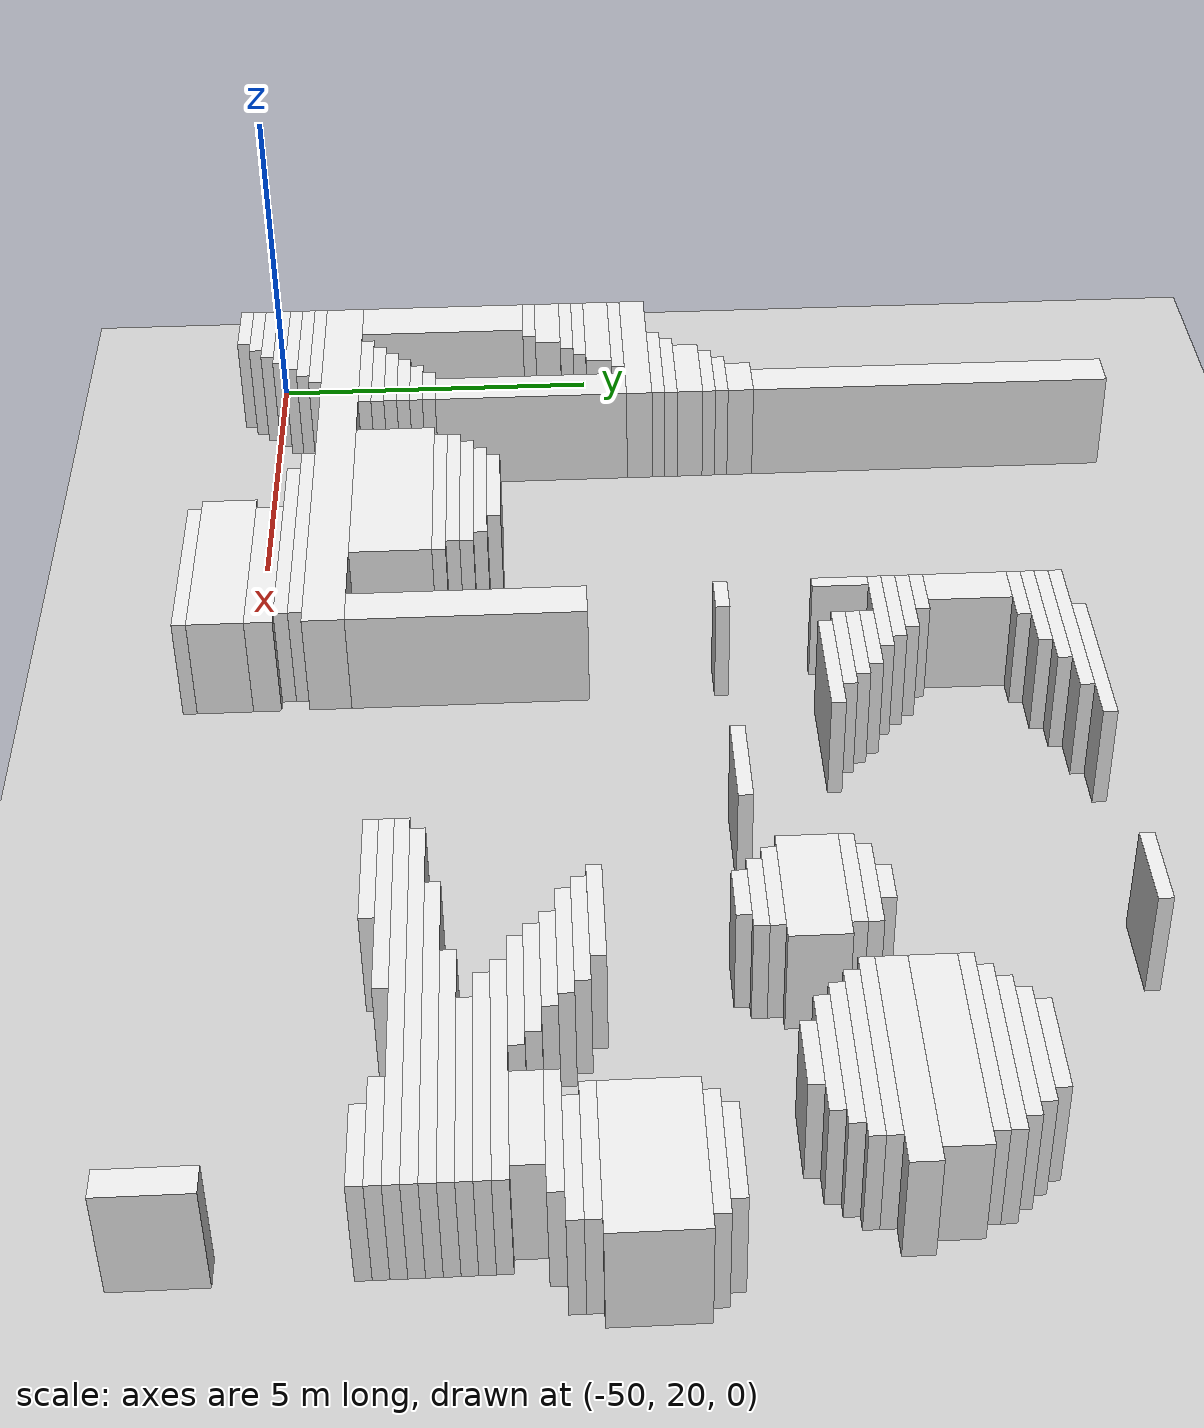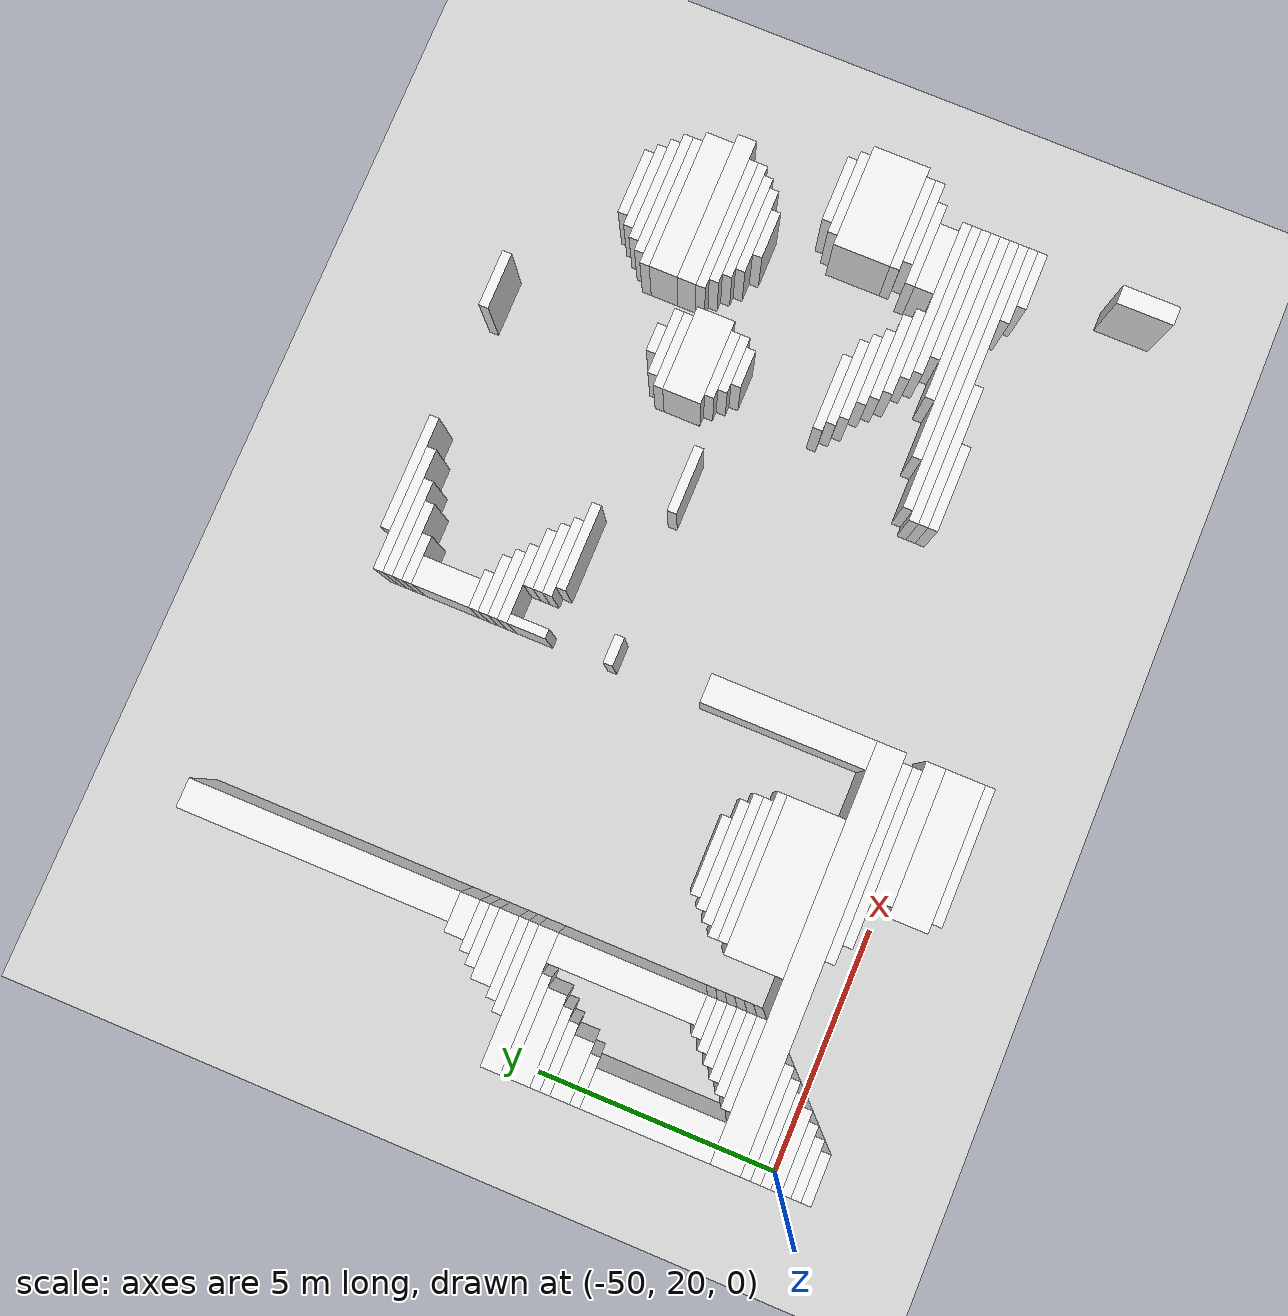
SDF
<sdf version="1.7">
 <world name="default">
  <model name="ground_plane">
   <static>1</static>
   <link name="link">
    <collision name="collision">
     <geometry><plane><normal>0 0 1</normal><size>120 120</size></plane></geometry>
    </collision>
    <visual name="visual">
     <geometry><plane><normal>0 0 1</normal><size>120 120</size></plane></geometry>
     <material>
      <script><uri>file://media/materials/scripts/gazebo.material</uri><name>Gazebo/Grey</name></script>
     </material>
    </visual>
   </link>
  </model>
  <model name="random_complex_01_model">
   <static>1</static>
   <link name="obs_591">
    <pose>-40.2000 31.7000 0.8000 0 0 0</pose>
    <collision name="obs_591_col"><geometry><box><size>2.4000 0.2000 1.6000</size></box></geometry></collision>
    <visual name="obs_591_vis">
     <geometry><box><size>2.4000 0.2000 1.6000</size></box></geometry>
     <material>
      <script><uri>file://media/materials/scripts/gazebo.material</uri><name>Gazebo/White</name></script>
     </material>
    </visual>
   </link>
   <link name="obs_592">
    <pose>-36.0000 31.7000 0.8000 0 0 0</pose>
    <collision name="obs_592_col"><geometry><box><size>1.2000 0.2000 1.6000</size></box></geometry></collision>
    <visual name="obs_592_vis">
     <geometry><box><size>1.2000 0.2000 1.6000</size></box></geometry>
     <material>
      <script><uri>file://media/materials/scripts/gazebo.material</uri><name>Gazebo/White</name></script>
     </material>
    </visual>
   </link>
   <link name="obs_600">
    <pose>-40.9000 31.5000 0.8000 0 0 0</pose>
    <collision name="obs_600_col"><geometry><box><size>2.6000 0.2000 1.6000</size></box></geometry></collision>
    <visual name="obs_600_vis">
     <geometry><box><size>2.6000 0.2000 1.6000</size></box></geometry>
     <material>
      <script><uri>file://media/materials/scripts/gazebo.material</uri><name>Gazebo/White</name></script>
     </material>
    </visual>
   </link>
   <link name="obs_606">
    <pose>-41.2000 31.3000 0.8000 0 0 0</pose>
    <collision name="obs_606_col"><geometry><box><size>2.0000 0.2000 1.6000</size></box></geometry></collision>
    <visual name="obs_606_vis">
     <geometry><box><size>2.0000 0.2000 1.6000</size></box></geometry>
     <material>
      <script><uri>file://media/materials/scripts/gazebo.material</uri><name>Gazebo/White</name></script>
     </material>
    </visual>
   </link>
   <link name="obs_612">
    <pose>-41.4000 31.1000 0.8000 0 0 0</pose>
    <collision name="obs_612_col"><geometry><box><size>1.6000 0.2000 1.6000</size></box></geometry></collision>
    <visual name="obs_612_vis">
     <geometry><box><size>1.6000 0.2000 1.6000</size></box></geometry>
     <material>
      <script><uri>file://media/materials/scripts/gazebo.material</uri><name>Gazebo/White</name></script>
     </material>
    </visual>
   </link>
   <link name="obs_620">
    <pose>-41.7000 30.9000 0.8000 0 0 0</pose>
    <collision name="obs_620_col"><geometry><box><size>1.0000 0.2000 1.6000</size></box></geometry></collision>
    <visual name="obs_620_vis">
     <geometry><box><size>1.0000 0.2000 1.6000</size></box></geometry>
     <material>
      <script><uri>file://media/materials/scripts/gazebo.material</uri><name>Gazebo/White</name></script>
     </material>
    </visual>
   </link>
   <link name="obs_643">
    <pose>-33.1000 29.9000 0.8000 0 0 0</pose>
    <collision name="obs_643_col"><geometry><box><size>1.4000 0.2000 1.6000</size></box></geometry></collision>
    <visual name="obs_643_vis">
     <geometry><box><size>1.4000 0.2000 1.6000</size></box></geometry>
     <material>
      <script><uri>file://media/materials/scripts/gazebo.material</uri><name>Gazebo/White</name></script>
     </material>
    </visual>
   </link>
   <link name="obs_650">
    <pose>-41.9000 30.2000 0.8000 0 0 0</pose>
    <collision name="obs_650_col"><geometry><box><size>0.6000 1.2000 1.6000</size></box></geometry></collision>
    <visual name="obs_650_vis">
     <geometry><box><size>0.6000 1.2000 1.6000</size></box></geometry>
     <material>
      <script><uri>file://media/materials/scripts/gazebo.material</uri><name>Gazebo/White</name></script>
     </material>
    </visual>
   </link>
   <link name="obs_651">
    <pose>-33.1000 29.7000 0.8000 0 0 0</pose>
    <collision name="obs_651_col"><geometry><box><size>1.8000 0.2000 1.6000</size></box></geometry></collision>
    <visual name="obs_651_vis">
     <geometry><box><size>1.8000 0.2000 1.6000</size></box></geometry>
     <material>
      <script><uri>file://media/materials/scripts/gazebo.material</uri><name>Gazebo/White</name></script>
     </material>
    </visual>
   </link>
   <link name="obs_658">
    <pose>-41.8000 29.5000 0.8000 0 0 0</pose>
    <collision name="obs_658_col"><geometry><box><size>0.8000 0.2000 1.6000</size></box></geometry></collision>
    <visual name="obs_658_vis">
     <geometry><box><size>0.8000 0.2000 1.6000</size></box></geometry>
     <material>
      <script><uri>file://media/materials/scripts/gazebo.material</uri><name>Gazebo/White</name></script>
     </material>
    </visual>
   </link>
   <link name="obs_659">
    <pose>-33.1000 29.5000 0.8000 0 0 0</pose>
    <collision name="obs_659_col"><geometry><box><size>2.2000 0.2000 1.6000</size></box></geometry></collision>
    <visual name="obs_659_vis">
     <geometry><box><size>2.2000 0.2000 1.6000</size></box></geometry>
     <material>
      <script><uri>file://media/materials/scripts/gazebo.material</uri><name>Gazebo/White</name></script>
     </material>
    </visual>
   </link>
   <link name="obs_664">
    <pose>-41.6000 29.3000 0.8000 0 0 0</pose>
    <collision name="obs_664_col"><geometry><box><size>1.2000 0.2000 1.6000</size></box></geometry></collision>
    <visual name="obs_664_vis">
     <geometry><box><size>1.2000 0.2000 1.6000</size></box></geometry>
     <material>
      <script><uri>file://media/materials/scripts/gazebo.material</uri><name>Gazebo/White</name></script>
     </material>
    </visual>
   </link>
   <link name="obs_665">
    <pose>-33.1000 29.3000 0.8000 0 0 0</pose>
    <collision name="obs_665_col"><geometry><box><size>2.6000 0.2000 1.6000</size></box></geometry></collision>
    <visual name="obs_665_vis">
     <geometry><box><size>2.6000 0.2000 1.6000</size></box></geometry>
     <material>
      <script><uri>file://media/materials/scripts/gazebo.material</uri><name>Gazebo/White</name></script>
     </material>
    </visual>
   </link>
   <link name="obs_673">
    <pose>-41.5000 29.1000 0.8000 0 0 0</pose>
    <collision name="obs_673_col"><geometry><box><size>1.4000 0.2000 1.6000</size></box></geometry></collision>
    <visual name="obs_673_vis">
     <geometry><box><size>1.4000 0.2000 1.6000</size></box></geometry>
     <material>
      <script><uri>file://media/materials/scripts/gazebo.material</uri><name>Gazebo/White</name></script>
     </material>
    </visual>
   </link>
   <link name="obs_674">
    <pose>-33.2000 29.1000 0.8000 0 0 0</pose>
    <collision name="obs_674_col"><geometry><box><size>2.8000 0.2000 1.6000</size></box></geometry></collision>
    <visual name="obs_674_vis">
     <geometry><box><size>2.8000 0.2000 1.6000</size></box></geometry>
     <material>
      <script><uri>file://media/materials/scripts/gazebo.material</uri><name>Gazebo/White</name></script>
     </material>
    </visual>
   </link>
   <link name="obs_682">
    <pose>-41.4000 28.9000 0.8000 0 0 0</pose>
    <collision name="obs_682_col"><geometry><box><size>1.6000 0.2000 1.6000</size></box></geometry></collision>
    <visual name="obs_682_vis">
     <geometry><box><size>1.6000 0.2000 1.6000</size></box></geometry>
     <material>
      <script><uri>file://media/materials/scripts/gazebo.material</uri><name>Gazebo/White</name></script>
     </material>
    </visual>
   </link>
   <link name="obs_689">
    <pose>-40.8000 28.7000 0.8000 0 0 0</pose>
    <collision name="obs_689_col"><geometry><box><size>1.2000 0.2000 1.6000</size></box></geometry></collision>
    <visual name="obs_689_vis">
     <geometry><box><size>1.2000 0.2000 1.6000</size></box></geometry>
     <material>
      <script><uri>file://media/materials/scripts/gazebo.material</uri><name>Gazebo/White</name></script>
     </material>
    </visual>
   </link>
   <link name="obs_695">
    <pose>-33.1000 28.7000 0.8000 0 0 0</pose>
    <collision name="obs_695_col"><geometry><box><size>3.0000 0.6000 1.6000</size></box></geometry></collision>
    <visual name="obs_695_vis">
     <geometry><box><size>3.0000 0.6000 1.6000</size></box></geometry>
     <material>
      <script><uri>file://media/materials/scripts/gazebo.material</uri><name>Gazebo/White</name></script>
     </material>
    </visual>
   </link>
   <link name="obs_698">
    <pose>-40.7000 28.5000 0.8000 0 0 0</pose>
    <collision name="obs_698_col"><geometry><box><size>1.4000 0.2000 1.6000</size></box></geometry></collision>
    <visual name="obs_698_vis">
     <geometry><box><size>1.4000 0.2000 1.6000</size></box></geometry>
     <material>
      <script><uri>file://media/materials/scripts/gazebo.material</uri><name>Gazebo/White</name></script>
     </material>
    </visual>
   </link>
   <link name="obs_707">
    <pose>-40.6000 28.3000 0.8000 0 0 0</pose>
    <collision name="obs_707_col"><geometry><box><size>1.6000 0.2000 1.6000</size></box></geometry></collision>
    <visual name="obs_707_vis">
     <geometry><box><size>1.6000 0.2000 1.6000</size></box></geometry>
     <material>
      <script><uri>file://media/materials/scripts/gazebo.material</uri><name>Gazebo/White</name></script>
     </material>
    </visual>
   </link>
   <link name="obs_708">
    <pose>-35.9000 28.3000 0.8000 0 0 0</pose>
    <collision name="obs_708_col"><geometry><box><size>0.6000 0.2000 1.6000</size></box></geometry></collision>
    <visual name="obs_708_vis">
     <geometry><box><size>0.6000 0.2000 1.6000</size></box></geometry>
     <material>
      <script><uri>file://media/materials/scripts/gazebo.material</uri><name>Gazebo/White</name></script>
     </material>
    </visual>
   </link>
   <link name="obs_719">
    <pose>-42.1000 28.4000 0.8000 0 0 0</pose>
    <collision name="obs_719_col"><geometry><box><size>0.2000 0.8000 1.6000</size></box></geometry></collision>
    <visual name="obs_719_vis">
     <geometry><box><size>0.2000 0.8000 1.6000</size></box></geometry>
     <material>
      <script><uri>file://media/materials/scripts/gazebo.material</uri><name>Gazebo/White</name></script>
     </material>
    </visual>
   </link>
   <link name="obs_720">
    <pose>-33.0000 28.2000 0.8000 0 0 0</pose>
    <collision name="obs_720_col"><geometry><box><size>3.2000 0.4000 1.6000</size></box></geometry></collision>
    <visual name="obs_720_vis">
     <geometry><box><size>3.2000 0.4000 1.6000</size></box></geometry>
     <material>
      <script><uri>file://media/materials/scripts/gazebo.material</uri><name>Gazebo/White</name></script>
     </material>
    </visual>
   </link>
   <link name="obs_722">
    <pose>-40.3000 28.1000 0.8000 0 0 0</pose>
    <collision name="obs_722_col"><geometry><box><size>1.8000 0.2000 1.6000</size></box></geometry></collision>
    <visual name="obs_722_vis">
     <geometry><box><size>1.8000 0.2000 1.6000</size></box></geometry>
     <material>
      <script><uri>file://media/materials/scripts/gazebo.material</uri><name>Gazebo/White</name></script>
     </material>
    </visual>
   </link>
   <link name="obs_723">
    <pose>-35.9000 28.1000 0.8000 0 0 0</pose>
    <collision name="obs_723_col"><geometry><box><size>1.4000 0.2000 1.6000</size></box></geometry></collision>
    <visual name="obs_723_vis">
     <geometry><box><size>1.4000 0.2000 1.6000</size></box></geometry>
     <material>
      <script><uri>file://media/materials/scripts/gazebo.material</uri><name>Gazebo/White</name></script>
     </material>
    </visual>
   </link>
   <link name="obs_732">
    <pose>-36.0000 27.9000 0.8000 0 0 0</pose>
    <collision name="obs_732_col"><geometry><box><size>1.6000 0.2000 1.6000</size></box></geometry></collision>
    <visual name="obs_732_vis">
     <geometry><box><size>1.6000 0.2000 1.6000</size></box></geometry>
     <material>
      <script><uri>file://media/materials/scripts/gazebo.material</uri><name>Gazebo/White</name></script>
     </material>
    </visual>
   </link>
   <link name="obs_733">
    <pose>-33.2000 27.9000 0.8000 0 0 0</pose>
    <collision name="obs_733_col"><geometry><box><size>2.8000 0.2000 1.6000</size></box></geometry></collision>
    <visual name="obs_733_vis">
     <geometry><box><size>2.8000 0.2000 1.6000</size></box></geometry>
     <material>
      <script><uri>file://media/materials/scripts/gazebo.material</uri><name>Gazebo/White</name></script>
     </material>
    </visual>
   </link>
   <link name="obs_738">
    <pose>-47.5000 30.4000 0.8000 0 0 0</pose>
    <collision name="obs_738_col"><geometry><box><size>0.6000 5.6000 1.6000</size></box></geometry></collision>
    <visual name="obs_738_vis">
     <geometry><box><size>0.6000 5.6000 1.6000</size></box></geometry>
     <material>
      <script><uri>file://media/materials/scripts/gazebo.material</uri><name>Gazebo/White</name></script>
     </material>
    </visual>
   </link>
   <link name="obs_740">
    <pose>-33.1000 27.7000 0.8000 0 0 0</pose>
    <collision name="obs_740_col"><geometry><box><size>2.6000 0.2000 1.6000</size></box></geometry></collision>
    <visual name="obs_740_vis">
     <geometry><box><size>2.6000 0.2000 1.6000</size></box></geometry>
     <material>
      <script><uri>file://media/materials/scripts/gazebo.material</uri><name>Gazebo/White</name></script>
     </material>
    </visual>
   </link>
   <link name="obs_744">
    <pose>-33.1000 27.5000 0.8000 0 0 0</pose>
    <collision name="obs_744_col"><geometry><box><size>2.2000 0.2000 1.6000</size></box></geometry></collision>
    <visual name="obs_744_vis">
     <geometry><box><size>2.2000 0.2000 1.6000</size></box></geometry>
     <material>
      <script><uri>file://media/materials/scripts/gazebo.material</uri><name>Gazebo/White</name></script>
     </material>
    </visual>
   </link>
   <link name="obs_746">
    <pose>-47.6000 27.4000 0.8000 0 0 0</pose>
    <collision name="obs_746_col"><geometry><box><size>0.8000 0.4000 1.6000</size></box></geometry></collision>
    <visual name="obs_746_vis">
     <geometry><box><size>0.8000 0.4000 1.6000</size></box></geometry>
     <material>
      <script><uri>file://media/materials/scripts/gazebo.material</uri><name>Gazebo/White</name></script>
     </material>
    </visual>
   </link>
   <link name="obs_749">
    <pose>-33.1000 27.3000 0.8000 0 0 0</pose>
    <collision name="obs_749_col"><geometry><box><size>1.8000 0.2000 1.6000</size></box></geometry></collision>
    <visual name="obs_749_vis">
     <geometry><box><size>1.8000 0.2000 1.6000</size></box></geometry>
     <material>
      <script><uri>file://media/materials/scripts/gazebo.material</uri><name>Gazebo/White</name></script>
     </material>
    </visual>
   </link>
   <link name="obs_752">
    <pose>-35.9000 27.4000 0.8000 0 0 0</pose>
    <collision name="obs_752_col"><geometry><box><size>1.8000 0.8000 1.6000</size></box></geometry></collision>
    <visual name="obs_752_vis">
     <geometry><box><size>1.8000 0.8000 1.6000</size></box></geometry>
     <material>
      <script><uri>file://media/materials/scripts/gazebo.material</uri><name>Gazebo/White</name></script>
     </material>
    </visual>
   </link>
   <link name="obs_753">
    <pose>-47.7000 27.1000 0.8000 0 0 0</pose>
    <collision name="obs_753_col"><geometry><box><size>1.0000 0.2000 1.6000</size></box></geometry></collision>
    <visual name="obs_753_vis">
     <geometry><box><size>1.0000 0.2000 1.6000</size></box></geometry>
     <material>
      <script><uri>file://media/materials/scripts/gazebo.material</uri><name>Gazebo/White</name></script>
     </material>
    </visual>
   </link>
   <link name="obs_754">
    <pose>-33.1000 27.1000 0.8000 0 0 0</pose>
    <collision name="obs_754_col"><geometry><box><size>1.0000 0.2000 1.6000</size></box></geometry></collision>
    <visual name="obs_754_vis">
     <geometry><box><size>1.0000 0.2000 1.6000</size></box></geometry>
     <material>
      <script><uri>file://media/materials/scripts/gazebo.material</uri><name>Gazebo/White</name></script>
     </material>
    </visual>
   </link>
   <link name="obs_757">
    <pose>-47.8000 26.9000 0.8000 0 0 0</pose>
    <collision name="obs_757_col"><geometry><box><size>1.2000 0.2000 1.6000</size></box></geometry></collision>
    <visual name="obs_757_vis">
     <geometry><box><size>1.2000 0.2000 1.6000</size></box></geometry>
     <material>
      <script><uri>file://media/materials/scripts/gazebo.material</uri><name>Gazebo/White</name></script>
     </material>
    </visual>
   </link>
   <link name="obs_758">
    <pose>-35.9000 26.9000 0.8000 0 0 0</pose>
    <collision name="obs_758_col"><geometry><box><size>1.4000 0.2000 1.6000</size></box></geometry></collision>
    <visual name="obs_758_vis">
     <geometry><box><size>1.4000 0.2000 1.6000</size></box></geometry>
     <material>
      <script><uri>file://media/materials/scripts/gazebo.material</uri><name>Gazebo/White</name></script>
     </material>
    </visual>
   </link>
   <link name="obs_763">
    <pose>-41.9000 26.7000 0.8000 0 0 0</pose>
    <collision name="obs_763_col"><geometry><box><size>0.6000 0.2000 1.6000</size></box></geometry></collision>
    <visual name="obs_763_vis">
     <geometry><box><size>0.6000 0.2000 1.6000</size></box></geometry>
     <material>
      <script><uri>file://media/materials/scripts/gazebo.material</uri><name>Gazebo/White</name></script>
     </material>
    </visual>
   </link>
   <link name="obs_764">
    <pose>-38.3000 26.7000 0.8000 0 0 0</pose>
    <collision name="obs_764_col"><geometry><box><size>1.4000 0.2000 1.6000</size></box></geometry></collision>
    <visual name="obs_764_vis">
     <geometry><box><size>1.4000 0.2000 1.6000</size></box></geometry>
     <material>
      <script><uri>file://media/materials/scripts/gazebo.material</uri><name>Gazebo/White</name></script>
     </material>
    </visual>
   </link>
   <link name="obs_765">
    <pose>-35.8000 26.7000 0.8000 0 0 0</pose>
    <collision name="obs_765_col"><geometry><box><size>1.2000 0.2000 1.6000</size></box></geometry></collision>
    <visual name="obs_765_vis">
     <geometry><box><size>1.2000 0.2000 1.6000</size></box></geometry>
     <material>
      <script><uri>file://media/materials/scripts/gazebo.material</uri><name>Gazebo/White</name></script>
     </material>
    </visual>
   </link>
   <link name="obs_777">
    <pose>-47.9000 26.6000 0.8000 0 0 0</pose>
    <collision name="obs_777_col"><geometry><box><size>1.4000 0.4000 1.6000</size></box></geometry></collision>
    <visual name="obs_777_vis">
     <geometry><box><size>1.4000 0.4000 1.6000</size></box></geometry>
     <material>
      <script><uri>file://media/materials/scripts/gazebo.material</uri><name>Gazebo/White</name></script>
     </material>
    </visual>
   </link>
   <link name="obs_779">
    <pose>-35.8000 26.5000 0.8000 0 0 0</pose>
    <collision name="obs_779_col"><geometry><box><size>0.8000 0.2000 1.6000</size></box></geometry></collision>
    <visual name="obs_779_vis">
     <geometry><box><size>0.8000 0.2000 1.6000</size></box></geometry>
     <material>
      <script><uri>file://media/materials/scripts/gazebo.material</uri><name>Gazebo/White</name></script>
     </material>
    </visual>
   </link>
   <link name="obs_783">
    <pose>-48.0000 26.3000 0.8000 0 0 0</pose>
    <collision name="obs_783_col"><geometry><box><size>1.6000 0.2000 1.6000</size></box></geometry></collision>
    <visual name="obs_783_vis">
     <geometry><box><size>1.6000 0.2000 1.6000</size></box></geometry>
     <material>
      <script><uri>file://media/materials/scripts/gazebo.material</uri><name>Gazebo/White</name></script>
     </material>
    </visual>
   </link>
   <link name="obs_790">
    <pose>-48.1000 26.1000 0.8000 0 0 0</pose>
    <collision name="obs_790_col"><geometry><box><size>1.8000 0.2000 1.6000</size></box></geometry></collision>
    <visual name="obs_790_vis">
     <geometry><box><size>1.8000 0.2000 1.6000</size></box></geometry>
     <material>
      <script><uri>file://media/materials/scripts/gazebo.material</uri><name>Gazebo/White</name></script>
     </material>
    </visual>
   </link>
   <link name="obs_791">
    <pose>-31.7000 26.1000 0.8000 0 0 0</pose>
    <collision name="obs_791_col"><geometry><box><size>1.4000 0.2000 1.6000</size></box></geometry></collision>
    <visual name="obs_791_vis">
     <geometry><box><size>1.4000 0.2000 1.6000</size></box></geometry>
     <material>
      <script><uri>file://media/materials/scripts/gazebo.material</uri><name>Gazebo/White</name></script>
     </material>
    </visual>
   </link>
   <link name="obs_797">
    <pose>-31.7000 25.9000 0.8000 0 0 0</pose>
    <collision name="obs_797_col"><geometry><box><size>1.8000 0.2000 1.6000</size></box></geometry></collision>
    <visual name="obs_797_vis">
     <geometry><box><size>1.8000 0.2000 1.6000</size></box></geometry>
     <material>
      <script><uri>file://media/materials/scripts/gazebo.material</uri><name>Gazebo/White</name></script>
     </material>
    </visual>
   </link>
   <link name="obs_802">
    <pose>-48.6000 25.8000 0.8000 0 0 0</pose>
    <collision name="obs_802_col"><geometry><box><size>2.8000 0.4000 1.6000</size></box></geometry></collision>
    <visual name="obs_802_vis">
     <geometry><box><size>2.8000 0.4000 1.6000</size></box></geometry>
     <material>
      <script><uri>file://media/materials/scripts/gazebo.material</uri><name>Gazebo/White</name></script>
     </material>
    </visual>
   </link>
   <link name="obs_809">
    <pose>-49.0000 25.5000 0.8000 0 0 0</pose>
    <collision name="obs_809_col"><geometry><box><size>2.0000 0.2000 1.6000</size></box></geometry></collision>
    <visual name="obs_809_vis">
     <geometry><box><size>2.0000 0.2000 1.6000</size></box></geometry>
     <material>
      <script><uri>file://media/materials/scripts/gazebo.material</uri><name>Gazebo/White</name></script>
     </material>
    </visual>
   </link>
   <link name="obs_820">
    <pose>-49.1000 25.2000 0.8000 0 0 0</pose>
    <collision name="obs_820_col"><geometry><box><size>1.8000 0.4000 1.6000</size></box></geometry></collision>
    <visual name="obs_820_vis">
     <geometry><box><size>1.8000 0.4000 1.6000</size></box></geometry>
     <material>
      <script><uri>file://media/materials/scripts/gazebo.material</uri><name>Gazebo/White</name></script>
     </material>
    </visual>
   </link>
   <link name="obs_825">
    <pose>-49.2000 24.9000 0.8000 0 0 0</pose>
    <collision name="obs_825_col"><geometry><box><size>1.6000 0.2000 1.6000</size></box></geometry></collision>
    <visual name="obs_825_vis">
     <geometry><box><size>1.6000 0.2000 1.6000</size></box></geometry>
     <material>
      <script><uri>file://media/materials/scripts/gazebo.material</uri><name>Gazebo/White</name></script>
     </material>
    </visual>
   </link>
   <link name="obs_828">
    <pose>-31.7000 25.2000 0.8000 0 0 0</pose>
    <collision name="obs_828_col"><geometry><box><size>2.2000 1.2000 1.6000</size></box></geometry></collision>
    <visual name="obs_828_vis">
     <geometry><box><size>2.2000 1.2000 1.6000</size></box></geometry>
     <material>
      <script><uri>file://media/materials/scripts/gazebo.material</uri><name>Gazebo/White</name></script>
     </material>
    </visual>
   </link>
   <link name="obs_829">
    <pose>-49.3000 24.7000 0.8000 0 0 0</pose>
    <collision name="obs_829_col"><geometry><box><size>1.4000 0.2000 1.6000</size></box></geometry></collision>
    <visual name="obs_829_vis">
     <geometry><box><size>1.4000 0.2000 1.6000</size></box></geometry>
     <material>
      <script><uri>file://media/materials/scripts/gazebo.material</uri><name>Gazebo/White</name></script>
     </material>
    </visual>
   </link>
   <link name="obs_830">
    <pose>-35.6000 24.7000 0.8000 0 0 0</pose>
    <collision name="obs_830_col"><geometry><box><size>1.6000 0.2000 1.6000</size></box></geometry></collision>
    <visual name="obs_830_vis">
     <geometry><box><size>1.6000 0.2000 1.6000</size></box></geometry>
     <material>
      <script><uri>file://media/materials/scripts/gazebo.material</uri><name>Gazebo/White</name></script>
     </material>
    </visual>
   </link>
   <link name="obs_836">
    <pose>-35.3000 24.5000 0.8000 0 0 0</pose>
    <collision name="obs_836_col"><geometry><box><size>1.8000 0.2000 1.6000</size></box></geometry></collision>
    <visual name="obs_836_vis">
     <geometry><box><size>1.8000 0.2000 1.6000</size></box></geometry>
     <material>
      <script><uri>file://media/materials/scripts/gazebo.material</uri><name>Gazebo/White</name></script>
     </material>
    </visual>
   </link>
   <link name="obs_837">
    <pose>-31.8000 24.5000 0.8000 0 0 0</pose>
    <collision name="obs_837_col"><geometry><box><size>2.0000 0.2000 1.6000</size></box></geometry></collision>
    <visual name="obs_837_vis">
     <geometry><box><size>2.0000 0.2000 1.6000</size></box></geometry>
     <material>
      <script><uri>file://media/materials/scripts/gazebo.material</uri><name>Gazebo/White</name></script>
     </material>
    </visual>
   </link>
   <link name="obs_844">
    <pose>-49.4000 24.4000 0.8000 0 0 0</pose>
    <collision name="obs_844_col"><geometry><box><size>1.2000 0.4000 1.6000</size></box></geometry></collision>
    <visual name="obs_844_vis">
     <geometry><box><size>1.2000 0.4000 1.6000</size></box></geometry>
     <material>
      <script><uri>file://media/materials/scripts/gazebo.material</uri><name>Gazebo/White</name></script>
     </material>
    </visual>
   </link>
   <link name="obs_845">
    <pose>-35.1000 24.3000 0.8000 0 0 0</pose>
    <collision name="obs_845_col"><geometry><box><size>1.8000 0.2000 1.6000</size></box></geometry></collision>
    <visual name="obs_845_vis">
     <geometry><box><size>1.8000 0.2000 1.6000</size></box></geometry>
     <material>
      <script><uri>file://media/materials/scripts/gazebo.material</uri><name>Gazebo/White</name></script>
     </material>
    </visual>
   </link>
   <link name="obs_846">
    <pose>-31.7000 24.3000 0.8000 0 0 0</pose>
    <collision name="obs_846_col"><geometry><box><size>1.8000 0.2000 1.6000</size></box></geometry></collision>
    <visual name="obs_846_vis">
     <geometry><box><size>1.8000 0.2000 1.6000</size></box></geometry>
     <material>
      <script><uri>file://media/materials/scripts/gazebo.material</uri><name>Gazebo/White</name></script>
     </material>
    </visual>
   </link>
   <link name="obs_851">
    <pose>-49.5000 24.1000 0.8000 0 0 0</pose>
    <collision name="obs_851_col"><geometry><box><size>1.0000 0.2000 1.6000</size></box></geometry></collision>
    <visual name="obs_851_vis">
     <geometry><box><size>1.0000 0.2000 1.6000</size></box></geometry>
     <material>
      <script><uri>file://media/materials/scripts/gazebo.material</uri><name>Gazebo/White</name></script>
     </material>
    </visual>
   </link>
   <link name="obs_852">
    <pose>-34.8000 24.1000 0.8000 0 0 0</pose>
    <collision name="obs_852_col"><geometry><box><size>1.6000 0.2000 1.6000</size></box></geometry></collision>
    <visual name="obs_852_vis">
     <geometry><box><size>1.6000 0.2000 1.6000</size></box></geometry>
     <material>
      <script><uri>file://media/materials/scripts/gazebo.material</uri><name>Gazebo/White</name></script>
     </material>
    </visual>
   </link>
   <link name="obs_853">
    <pose>-32.1000 24.1000 0.8000 0 0 0</pose>
    <collision name="obs_853_col"><geometry><box><size>1.8000 0.2000 1.6000</size></box></geometry></collision>
    <visual name="obs_853_vis">
     <geometry><box><size>1.8000 0.2000 1.6000</size></box></geometry>
     <material>
      <script><uri>file://media/materials/scripts/gazebo.material</uri><name>Gazebo/White</name></script>
     </material>
    </visual>
   </link>
   <link name="obs_859">
    <pose>-34.5000 23.9000 0.8000 0 0 0</pose>
    <collision name="obs_859_col"><geometry><box><size>1.8000 0.2000 1.6000</size></box></geometry></collision>
    <visual name="obs_859_vis">
     <geometry><box><size>1.8000 0.2000 1.6000</size></box></geometry>
     <material>
      <script><uri>file://media/materials/scripts/gazebo.material</uri><name>Gazebo/White</name></script>
     </material>
    </visual>
   </link>
   <link name="obs_862">
    <pose>-32.3000 23.8000 0.8000 0 0 0</pose>
    <collision name="obs_862_col"><geometry><box><size>1.4000 0.4000 1.6000</size></box></geometry></collision>
    <visual name="obs_862_vis">
     <geometry><box><size>1.4000 0.4000 1.6000</size></box></geometry>
     <material>
      <script><uri>file://media/materials/scripts/gazebo.material</uri><name>Gazebo/White</name></script>
     </material>
    </visual>
   </link>
   <link name="obs_864">
    <pose>-34.3000 23.7000 0.8000 0 0 0</pose>
    <collision name="obs_864_col"><geometry><box><size>1.8000 0.2000 1.6000</size></box></geometry></collision>
    <visual name="obs_864_vis">
     <geometry><box><size>1.8000 0.2000 1.6000</size></box></geometry>
     <material>
      <script><uri>file://media/materials/scripts/gazebo.material</uri><name>Gazebo/White</name></script>
     </material>
    </visual>
   </link>
   <link name="obs_869">
    <pose>-44.8000 23.5000 0.8000 0 0 0</pose>
    <collision name="obs_869_col"><geometry><box><size>1.6000 0.2000 1.6000</size></box></geometry></collision>
    <visual name="obs_869_vis">
     <geometry><box><size>1.6000 0.2000 1.6000</size></box></geometry>
     <material>
      <script><uri>file://media/materials/scripts/gazebo.material</uri><name>Gazebo/White</name></script>
     </material>
    </visual>
   </link>
   <link name="obs_870">
    <pose>-33.1000 23.5000 0.8000 0 0 0</pose>
    <collision name="obs_870_col"><geometry><box><size>3.4000 0.2000 1.6000</size></box></geometry></collision>
    <visual name="obs_870_vis">
     <geometry><box><size>3.4000 0.2000 1.6000</size></box></geometry>
     <material>
      <script><uri>file://media/materials/scripts/gazebo.material</uri><name>Gazebo/White</name></script>
     </material>
    </visual>
   </link>
   <link name="obs_878">
    <pose>-44.7000 23.3000 0.8000 0 0 0</pose>
    <collision name="obs_878_col"><geometry><box><size>2.2000 0.2000 1.6000</size></box></geometry></collision>
    <visual name="obs_878_vis">
     <geometry><box><size>2.2000 0.2000 1.6000</size></box></geometry>
     <material>
      <script><uri>file://media/materials/scripts/gazebo.material</uri><name>Gazebo/White</name></script>
     </material>
    </visual>
   </link>
   <link name="obs_879">
    <pose>-33.0000 23.3000 0.8000 0 0 0</pose>
    <collision name="obs_879_col"><geometry><box><size>3.2000 0.2000 1.6000</size></box></geometry></collision>
    <visual name="obs_879_vis">
     <geometry><box><size>3.2000 0.2000 1.6000</size></box></geometry>
     <material>
      <script><uri>file://media/materials/scripts/gazebo.material</uri><name>Gazebo/White</name></script>
     </material>
    </visual>
   </link>
   <link name="obs_889">
    <pose>-44.7000 23.1000 0.8000 0 0 0</pose>
    <collision name="obs_889_col"><geometry><box><size>2.6000 0.2000 1.6000</size></box></geometry></collision>
    <visual name="obs_889_vis">
     <geometry><box><size>2.6000 0.2000 1.6000</size></box></geometry>
     <material>
      <script><uri>file://media/materials/scripts/gazebo.material</uri><name>Gazebo/White</name></script>
     </material>
    </visual>
   </link>
   <link name="obs_890">
    <pose>-32.8000 23.1000 0.8000 0 0 0</pose>
    <collision name="obs_890_col"><geometry><box><size>2.8000 0.2000 1.6000</size></box></geometry></collision>
    <visual name="obs_890_vis">
     <geometry><box><size>2.8000 0.2000 1.6000</size></box></geometry>
     <material>
      <script><uri>file://media/materials/scripts/gazebo.material</uri><name>Gazebo/White</name></script>
     </material>
    </visual>
   </link>
   <link name="obs_897">
    <pose>-44.8000 22.9000 0.8000 0 0 0</pose>
    <collision name="obs_897_col"><geometry><box><size>2.8000 0.2000 1.6000</size></box></geometry></collision>
    <visual name="obs_897_vis">
     <geometry><box><size>2.8000 0.2000 1.6000</size></box></geometry>
     <material>
      <script><uri>file://media/materials/scripts/gazebo.material</uri><name>Gazebo/White</name></script>
     </material>
    </visual>
   </link>
   <link name="obs_898">
    <pose>-33.2000 22.9000 0.8000 0 0 0</pose>
    <collision name="obs_898_col"><geometry><box><size>3.6000 0.2000 1.6000</size></box></geometry></collision>
    <visual name="obs_898_vis">
     <geometry><box><size>3.6000 0.2000 1.6000</size></box></geometry>
     <material>
      <script><uri>file://media/materials/scripts/gazebo.material</uri><name>Gazebo/White</name></script>
     </material>
    </visual>
   </link>
   <link name="obs_907">
    <pose>-47.5000 24.1000 0.8000 0 0 0</pose>
    <collision name="obs_907_col"><geometry><box><size>0.6000 3.0000 1.6000</size></box></geometry></collision>
    <visual name="obs_907_vis">
     <geometry><box><size>0.6000 3.0000 1.6000</size></box></geometry>
     <material>
      <script><uri>file://media/materials/scripts/gazebo.material</uri><name>Gazebo/White</name></script>
     </material>
    </visual>
   </link>
   <link name="obs_908">
    <pose>-44.7000 22.7000 0.8000 0 0 0</pose>
    <collision name="obs_908_col"><geometry><box><size>3.0000 0.2000 1.6000</size></box></geometry></collision>
    <visual name="obs_908_vis">
     <geometry><box><size>3.0000 0.2000 1.6000</size></box></geometry>
     <material>
      <script><uri>file://media/materials/scripts/gazebo.material</uri><name>Gazebo/White</name></script>
     </material>
    </visual>
   </link>
   <link name="obs_909">
    <pose>-33.8000 22.7000 0.8000 0 0 0</pose>
    <collision name="obs_909_col"><geometry><box><size>4.8000 0.2000 1.6000</size></box></geometry></collision>
    <visual name="obs_909_vis">
     <geometry><box><size>4.8000 0.2000 1.6000</size></box></geometry>
     <material>
      <script><uri>file://media/materials/scripts/gazebo.material</uri><name>Gazebo/White</name></script>
     </material>
    </visual>
   </link>
   <link name="obs_918">
    <pose>-47.6000 22.5000 0.8000 0 0 0</pose>
    <collision name="obs_918_col"><geometry><box><size>0.8000 0.2000 1.6000</size></box></geometry></collision>
    <visual name="obs_918_vis">
     <geometry><box><size>0.8000 0.2000 1.6000</size></box></geometry>
     <material>
      <script><uri>file://media/materials/scripts/gazebo.material</uri><name>Gazebo/White</name></script>
     </material>
    </visual>
   </link>
   <link name="obs_919">
    <pose>-34.3000 22.5000 0.8000 0 0 0</pose>
    <collision name="obs_919_col"><geometry><box><size>5.8000 0.2000 1.6000</size></box></geometry></collision>
    <visual name="obs_919_vis">
     <geometry><box><size>5.8000 0.2000 1.6000</size></box></geometry>
     <material>
      <script><uri>file://media/materials/scripts/gazebo.material</uri><name>Gazebo/White</name></script>
     </material>
    </visual>
   </link>
   <link name="obs_927">
    <pose>-47.7000 22.3000 0.8000 0 0 0</pose>
    <collision name="obs_927_col"><geometry><box><size>1.0000 0.2000 1.6000</size></box></geometry></collision>
    <visual name="obs_927_vis">
     <geometry><box><size>1.0000 0.2000 1.6000</size></box></geometry>
     <material>
      <script><uri>file://media/materials/scripts/gazebo.material</uri><name>Gazebo/White</name></script>
     </material>
    </visual>
   </link>
   <link name="obs_928">
    <pose>-34.4000 22.3000 0.8000 0 0 0</pose>
    <collision name="obs_928_col"><geometry><box><size>6.0000 0.2000 1.6000</size></box></geometry></collision>
    <visual name="obs_928_vis">
     <geometry><box><size>6.0000 0.2000 1.6000</size></box></geometry>
     <material>
      <script><uri>file://media/materials/scripts/gazebo.material</uri><name>Gazebo/White</name></script>
     </material>
    </visual>
   </link>
   <link name="obs_935">
    <pose>-47.8000 22.1000 0.8000 0 0 0</pose>
    <collision name="obs_935_col"><geometry><box><size>1.2000 0.2000 1.6000</size></box></geometry></collision>
    <visual name="obs_935_vis">
     <geometry><box><size>1.2000 0.2000 1.6000</size></box></geometry>
     <material>
      <script><uri>file://media/materials/scripts/gazebo.material</uri><name>Gazebo/White</name></script>
     </material>
    </visual>
   </link>
   <link name="obs_936">
    <pose>-35.9000 22.1000 0.8000 0 0 0</pose>
    <collision name="obs_936_col"><geometry><box><size>3.0000 0.2000 1.6000</size></box></geometry></collision>
    <visual name="obs_936_vis">
     <geometry><box><size>3.0000 0.2000 1.6000</size></box></geometry>
     <material>
      <script><uri>file://media/materials/scripts/gazebo.material</uri><name>Gazebo/White</name></script>
     </material>
    </visual>
   </link>
   <link name="obs_937">
    <pose>-32.2000 22.1000 0.8000 0 0 0</pose>
    <collision name="obs_937_col"><geometry><box><size>1.6000 0.2000 1.6000</size></box></geometry></collision>
    <visual name="obs_937_vis">
     <geometry><box><size>1.6000 0.2000 1.6000</size></box></geometry>
     <material>
      <script><uri>file://media/materials/scripts/gazebo.material</uri><name>Gazebo/White</name></script>
     </material>
    </visual>
   </link>
   <link name="obs_945">
    <pose>-47.9000 21.9000 0.8000 0 0 0</pose>
    <collision name="obs_945_col"><geometry><box><size>1.4000 0.2000 1.6000</size></box></geometry></collision>
    <visual name="obs_945_vis">
     <geometry><box><size>1.4000 0.2000 1.6000</size></box></geometry>
     <material>
      <script><uri>file://media/materials/scripts/gazebo.material</uri><name>Gazebo/White</name></script>
     </material>
    </visual>
   </link>
   <link name="obs_946">
    <pose>-36.5000 21.9000 0.8000 0 0 0</pose>
    <collision name="obs_946_col"><geometry><box><size>1.8000 0.2000 1.6000</size></box></geometry></collision>
    <visual name="obs_946_vis">
     <geometry><box><size>1.8000 0.2000 1.6000</size></box></geometry>
     <material>
      <script><uri>file://media/materials/scripts/gazebo.material</uri><name>Gazebo/White</name></script>
     </material>
    </visual>
   </link>
   <link name="obs_947">
    <pose>-32.0000 21.9000 0.8000 0 0 0</pose>
    <collision name="obs_947_col"><geometry><box><size>1.2000 0.2000 1.6000</size></box></geometry></collision>
    <visual name="obs_947_vis">
     <geometry><box><size>1.2000 0.2000 1.6000</size></box></geometry>
     <material>
      <script><uri>file://media/materials/scripts/gazebo.material</uri><name>Gazebo/White</name></script>
     </material>
    </visual>
   </link>
   <link name="obs_953">
    <pose>-48.0000 21.7000 0.8000 0 0 0</pose>
    <collision name="obs_953_col"><geometry><box><size>1.6000 0.2000 1.6000</size></box></geometry></collision>
    <visual name="obs_953_vis">
     <geometry><box><size>1.6000 0.2000 1.6000</size></box></geometry>
     <material>
      <script><uri>file://media/materials/scripts/gazebo.material</uri><name>Gazebo/White</name></script>
     </material>
    </visual>
   </link>
   <link name="obs_954">
    <pose>-41.9000 23.1000 0.8000 0 0 0</pose>
    <collision name="obs_954_col"><geometry><box><size>0.6000 3.4000 1.6000</size></box></geometry></collision>
    <visual name="obs_954_vis">
     <geometry><box><size>0.6000 3.4000 1.6000</size></box></geometry>
     <material>
      <script><uri>file://media/materials/scripts/gazebo.material</uri><name>Gazebo/White</name></script>
     </material>
    </visual>
   </link>
   <link name="obs_955">
    <pose>-49.6000 22.7000 0.8000 0 0 0</pose>
    <collision name="obs_955_col"><geometry><box><size>0.8000 2.6000 1.6000</size></box></geometry></collision>
    <visual name="obs_955_vis">
     <geometry><box><size>0.8000 2.6000 1.6000</size></box></geometry>
     <material>
      <script><uri>file://media/materials/scripts/gazebo.material</uri><name>Gazebo/White</name></script>
     </material>
    </visual>
   </link>
   <link name="obs_956">
    <pose>-44.8000 22.0000 0.8000 0 0 0</pose>
    <collision name="obs_956_col"><geometry><box><size>3.2000 1.2000 1.6000</size></box></geometry></collision>
    <visual name="obs_956_vis">
     <geometry><box><size>3.2000 1.2000 1.6000</size></box></geometry>
     <material>
      <script><uri>file://media/materials/scripts/gazebo.material</uri><name>Gazebo/White</name></script>
     </material>
    </visual>
   </link>
   <link name="obs_957">
    <pose>-48.1000 21.5000 0.8000 0 0 0</pose>
    <collision name="obs_957_col"><geometry><box><size>1.8000 0.2000 1.6000</size></box></geometry></collision>
    <visual name="obs_957_vis">
     <geometry><box><size>1.8000 0.2000 1.6000</size></box></geometry>
     <material>
      <script><uri>file://media/materials/scripts/gazebo.material</uri><name>Gazebo/White</name></script>
     </material>
    </visual>
   </link>
   <link name="obs_961">
    <pose>-45.8000 21.1000 0.8000 0 0 0</pose>
    <collision name="obs_961_col"><geometry><box><size>8.4000 0.6000 1.6000</size></box></geometry></collision>
    <visual name="obs_961_vis">
     <geometry><box><size>8.4000 0.6000 1.6000</size></box></geometry>
     <material>
      <script><uri>file://media/materials/scripts/gazebo.material</uri><name>Gazebo/White</name></script>
     </material>
    </visual>
   </link>
   <link name="obs_964">
    <pose>-48.9000 20.7000 0.8000 0 0 0</pose>
    <collision name="obs_964_col"><geometry><box><size>2.2000 0.2000 1.6000</size></box></geometry></collision>
    <visual name="obs_964_vis">
     <geometry><box><size>2.2000 0.2000 1.6000</size></box></geometry>
     <material>
      <script><uri>file://media/materials/scripts/gazebo.material</uri><name>Gazebo/White</name></script>
     </material>
    </visual>
   </link>
   <link name="obs_965">
    <pose>-43.8000 20.7000 0.8000 0 0 0</pose>
    <collision name="obs_965_col"><geometry><box><size>4.0000 0.2000 1.6000</size></box></geometry></collision>
    <visual name="obs_965_vis">
     <geometry><box><size>4.0000 0.2000 1.6000</size></box></geometry>
     <material>
      <script><uri>file://media/materials/scripts/gazebo.material</uri><name>Gazebo/White</name></script>
     </material>
    </visual>
   </link>
   <link name="obs_968">
    <pose>-49.0000 20.5000 0.8000 0 0 0</pose>
    <collision name="obs_968_col"><geometry><box><size>2.0000 0.2000 1.6000</size></box></geometry></collision>
    <visual name="obs_968_vis">
     <geometry><box><size>2.0000 0.2000 1.6000</size></box></geometry>
     <material>
      <script><uri>file://media/materials/scripts/gazebo.material</uri><name>Gazebo/White</name></script>
     </material>
    </visual>
   </link>
   <link name="obs_969">
    <pose>-43.6000 20.5000 0.8000 0 0 0</pose>
    <collision name="obs_969_col"><geometry><box><size>3.6000 0.2000 1.6000</size></box></geometry></collision>
    <visual name="obs_969_vis">
     <geometry><box><size>3.6000 0.2000 1.6000</size></box></geometry>
     <material>
      <script><uri>file://media/materials/scripts/gazebo.material</uri><name>Gazebo/White</name></script>
     </material>
    </visual>
   </link>
   <link name="obs_973">
    <pose>-49.1000 20.3000 0.8000 0 0 0</pose>
    <collision name="obs_973_col"><geometry><box><size>1.8000 0.2000 1.6000</size></box></geometry></collision>
    <visual name="obs_973_vis">
     <geometry><box><size>1.8000 0.2000 1.6000</size></box></geometry>
     <material>
      <script><uri>file://media/materials/scripts/gazebo.material</uri><name>Gazebo/White</name></script>
     </material>
    </visual>
   </link>
   <link name="obs_977">
    <pose>-43.0000 20.2000 0.8000 0 0 0</pose>
    <collision name="obs_977_col"><geometry><box><size>2.8000 0.4000 1.6000</size></box></geometry></collision>
    <visual name="obs_977_vis">
     <geometry><box><size>2.8000 0.4000 1.6000</size></box></geometry>
     <material>
      <script><uri>file://media/materials/scripts/gazebo.material</uri><name>Gazebo/White</name></script>
     </material>
    </visual>
   </link>
   <link name="obs_978">
    <pose>-49.2000 20.1000 0.8000 0 0 0</pose>
    <collision name="obs_978_col"><geometry><box><size>1.6000 0.2000 1.6000</size></box></geometry></collision>
    <visual name="obs_978_vis">
     <geometry><box><size>1.6000 0.2000 1.6000</size></box></geometry>
     <material>
      <script><uri>file://media/materials/scripts/gazebo.material</uri><name>Gazebo/White</name></script>
     </material>
    </visual>
   </link>
   <link name="obs_988">
    <pose>-49.3000 19.9000 0.8000 0 0 0</pose>
    <collision name="obs_988_col"><geometry><box><size>1.4000 0.2000 1.6000</size></box></geometry></collision>
    <visual name="obs_988_vis">
     <geometry><box><size>1.4000 0.2000 1.6000</size></box></geometry>
     <material>
      <script><uri>file://media/materials/scripts/gazebo.material</uri><name>Gazebo/White</name></script>
     </material>
    </visual>
   </link>
   <link name="obs_994">
    <pose>-49.4000 19.7000 0.8000 0 0 0</pose>
    <collision name="obs_994_col"><geometry><box><size>1.2000 0.2000 1.6000</size></box></geometry></collision>
    <visual name="obs_994_vis">
     <geometry><box><size>1.2000 0.2000 1.6000</size></box></geometry>
     <material>
      <script><uri>file://media/materials/scripts/gazebo.material</uri><name>Gazebo/White</name></script>
     </material>
    </visual>
   </link>
   <link name="obs_998">
    <pose>-49.5000 19.5000 0.8000 0 0 0</pose>
    <collision name="obs_998_col"><geometry><box><size>1.0000 0.2000 1.6000</size></box></geometry></collision>
    <visual name="obs_998_vis">
     <geometry><box><size>1.0000 0.2000 1.6000</size></box></geometry>
     <material>
      <script><uri>file://media/materials/scripts/gazebo.material</uri><name>Gazebo/White</name></script>
     </material>
    </visual>
   </link>
   <link name="obs_1000">
    <pose>-43.1000 19.6000 0.8000 0 0 0</pose>
    <collision name="obs_1000_col"><geometry><box><size>3.0000 0.8000 1.6000</size></box></geometry></collision>
    <visual name="obs_1000_vis">
     <geometry><box><size>3.0000 0.8000 1.6000</size></box></geometry>
     <material>
      <script><uri>file://media/materials/scripts/gazebo.material</uri><name>Gazebo/White</name></script>
     </material>
    </visual>
   </link>
   <link name="obs_1007">
    <pose>-31.6000 19.6000 0.8000 0 0 0</pose>
    <collision name="obs_1007_col"><geometry><box><size>0.4000 1.2000 1.6000</size></box></geometry></collision>
    <visual name="obs_1007_vis">
     <geometry><box><size>0.4000 1.2000 1.6000</size></box></geometry>
     <material>
      <script><uri>file://media/materials/scripts/gazebo.material</uri><name>Gazebo/White</name></script>
     </material>
    </visual>
   </link>
   <link name="obs_1010">
    <pose>-43.0000 19.1000 0.8000 0 0 0</pose>
    <collision name="obs_1010_col"><geometry><box><size>2.8000 0.2000 1.6000</size></box></geometry></collision>
    <visual name="obs_1010_vis">
     <geometry><box><size>2.8000 0.2000 1.6000</size></box></geometry>
     <material>
      <script><uri>file://media/materials/scripts/gazebo.material</uri><name>Gazebo/White</name></script>
     </material>
    </visual>
   </link>
  </model>
 </world>
</sdf>
